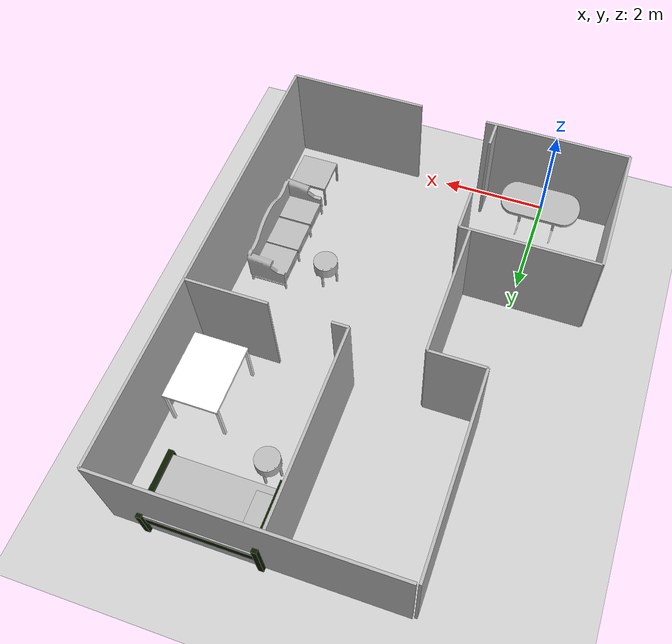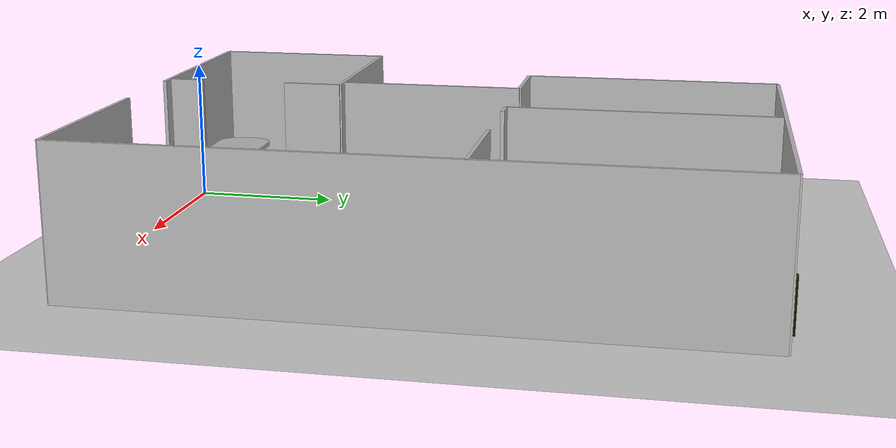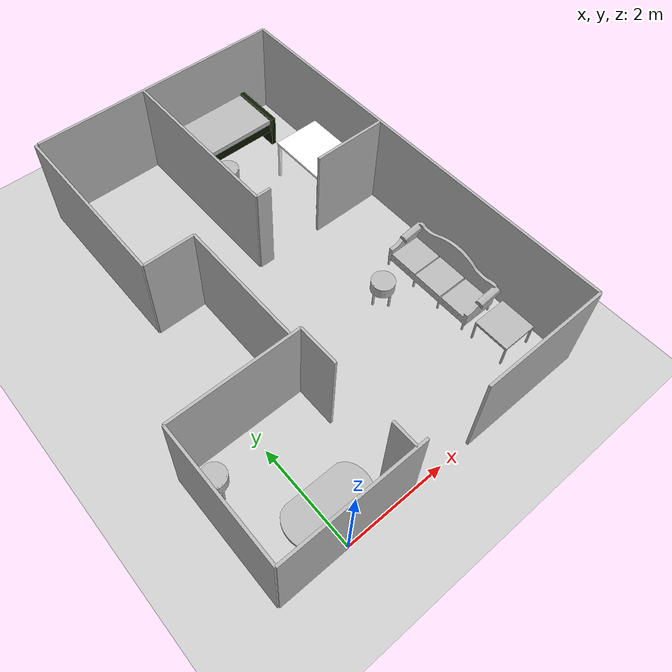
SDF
<sdf version="1.5">
 <world name="myworld">
  <include><uri>model://sun</uri></include>
  <include><uri>model://ground_plane</uri></include>
  <include><uri>model://hri_one_bedroom</uri></include>
  <include><uri>model://hri_couch</uri><pose>4.5 2.5 0 0 0 3.1416</pose></include>
  <include><uri>model://hri_coffeetable</uri><pose>4.5 1.0 0 0 0 0</pose></include>
  <include><uri>model://hri_roundtable</uri><pose>3.5 3 0 0 0 0</pose></include>
  <include><uri>model://hri_roundtable</uri><pose>-1 2 0 0 0 0</pose></include>
  <include><uri>model://hri_dinnertable</uri><pose>0 0.5 0 0 0 1.5708</pose></include>
  <include><uri>model://hri_bed</uri><pose>3.5 8 0 0 0 3.1416</pose></include>
  <include><uri>model://hri_roundtable</uri><pose>3 7 0 0 0 0</pose></include>
  <include><uri>model://hri_desk</uri><pose>4.5 6 0 0 0 1.5708</pose></include>
 </world>
</sdf>

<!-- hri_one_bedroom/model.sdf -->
<sdf version="1.4">
<model name="hri_one_bedroom">
  <pose>0 0 0 0 0 0</pose>
  <static>true</static>

    <link name="wall1">
      <pose>0 0 1 0 0 0</pose>
      <inertial>
        <mass>1000.0</mass>
        <inertia> <!-- interias are tricky to compute -->
          <!-- http://answers.gazebosim.org/question/4372/the-inertia-matrix-explained/ -->
          <ixx>0.083</ixx>       <!-- for a box: ixx = 0.083 * mass * (y*y + z*z) -->
          <ixy>0.0</ixy>         <!-- for a box: ixy = 0 -->
          <ixz>0.0</ixz>         <!-- for a box: ixz = 0 -->
          <iyy>0.083</iyy>       <!-- for a box: iyy = 0.083 * mass * (x*x + z*z) -->
          <iyz>0.0</iyz>         <!-- for a box: iyz = 0 -->
          <izz>0.083</izz>       <!-- for a box: izz = 0.083 * mass * (x*x + y*y) -->
        </inertia>
      </inertial>
      <collision name="collision">
        <geometry>
          <box>
            <size>2.7    0.0500    2.0000</size>
          </box>
        </geometry>
      </collision>
      <visual name="visual">
        <geometry>
          <box>
            <size>2.7    0.0500    2.0000</size>
          </box>
        </geometry>
      </visual>
    </link>

    <link name="wall2">
      <pose>-1.35 1.25 1 0 0 0</pose>
      <inertial>
        <mass>1000.0</mass>
        <inertia> <!-- interias are tricky to compute -->
          <!-- http://answers.gazebosim.org/question/4372/the-inertia-matrix-explained/ -->
          <ixx>0.083</ixx>       <!-- for a box: ixx = 0.083 * mass * (y*y + z*z) -->
          <ixy>0.0</ixy>         <!-- for a box: ixy = 0 -->
          <ixz>0.0</ixz>         <!-- for a box: ixz = 0 -->
          <iyy>0.083</iyy>       <!-- for a box: iyy = 0.083 * mass * (x*x + z*z) -->
          <iyz>0.0</iyz>         <!-- for a box: iyz = 0 -->
          <izz>0.083</izz>       <!-- for a box: izz = 0.083 * mass * (x*x + y*y) -->
        </inertia>
      </inertial>
      <collision name="collision">
        <geometry>
          <box>
            <size>0.0500    2.5    2.0000</size>
          </box>
        </geometry>
      </collision>
      <visual name="visual">
        <geometry>
          <box>
            <size>0.0500    2.5    2.0000</size>
          </box>
        </geometry>
      </visual>
    </link>

    <link name="wall3">
      <pose>-0.1 2.5 1 0 0 0</pose>
      <inertial>
        <mass>1000.0</mass>
        <inertia> <!-- interias are tricky to compute -->
          <!-- http://answers.gazebosim.org/question/4372/the-inertia-matrix-explained/ -->
          <ixx>0.083</ixx>       <!-- for a box: ixx = 0.083 * mass * (y*y + z*z) -->
          <ixy>0.0</ixy>         <!-- for a box: ixy = 0 -->
          <ixz>0.0</ixz>         <!-- for a box: ixz = 0 -->
          <iyy>0.083</iyy>       <!-- for a box: iyy = 0.083 * mass * (x*x + z*z) -->
          <iyz>0.0</iyz>         <!-- for a box: iyz = 0 -->
          <izz>0.083</izz>       <!-- for a box: izz = 0.083 * mass * (x*x + y*y) -->
        </inertia>
      </inertial>
      <collision name="collision">
        <geometry>
          <box>
            <size>2.5    0.0500    2.0000</size>
          </box>
        </geometry>
      </collision>
      <visual name="visual">
        <geometry>
          <box>
            <size>2.5    0.0500    2.0000</size>
          </box>
        </geometry>
      </visual>
    </link>

    <link name="wall4">
      <pose>1.15 0.25 1 0 0 0</pose>
      <inertial>
        <mass>1000.0</mass>
        <inertia> <!-- interias are tricky to compute -->
          <!-- http://answers.gazebosim.org/question/4372/the-inertia-matrix-explained/ -->
          <ixx>0.083</ixx>       <!-- for a box: ixx = 0.083 * mass * (y*y + z*z) -->
          <ixy>0.0</ixy>         <!-- for a box: ixy = 0 -->
          <ixz>0.0</ixz>         <!-- for a box: ixz = 0 -->
          <iyy>0.083</iyy>       <!-- for a box: iyy = 0.083 * mass * (x*x + z*z) -->
          <iyz>0.0</iyz>         <!-- for a box: iyz = 0 -->
          <izz>0.083</izz>       <!-- for a box: izz = 0.083 * mass * (x*x + y*y) -->
        </inertia>
      </inertial>
      <collision name="collision">
        <geometry>
          <box>
            <size>0.0500    0.5    2.0000</size>
          </box>
        </geometry>
      </collision>
      <visual name="visual">
        <geometry>
          <box>
            <size>0.0500    0.5    2.0000</size>
          </box>
        </geometry>
      </visual>
    </link>

    <link name="wall5">
      <pose>1.15 2.1 1 0 0 0</pose>
      <inertial>
        <mass>1000.0</mass>
        <inertia> <!-- interias are tricky to compute -->
          <!-- http://answers.gazebosim.org/question/4372/the-inertia-matrix-explained/ -->
          <ixx>0.083</ixx>       <!-- for a box: ixx = 0.083 * mass * (y*y + z*z) -->
          <ixy>0.0</ixy>         <!-- for a box: ixy = 0 -->
          <ixz>0.0</ixz>         <!-- for a box: ixz = 0 -->
          <iyy>0.083</iyy>       <!-- for a box: iyy = 0.083 * mass * (x*x + z*z) -->
          <iyz>0.0</iyz>         <!-- for a box: iyz = 0 -->
          <izz>0.083</izz>       <!-- for a box: izz = 0.083 * mass * (x*x + y*y) -->
        </inertia>
      </inertial>
      <collision name="collision">
        <geometry>
          <box>
            <size>0.0500    0.8    2.0000</size>
          </box>
        </geometry>
      </collision>
      <visual name="visual">
        <geometry>
          <box>
            <size>0.0500    0.8    2.0000</size>
          </box>
        </geometry>
      </visual>
    </link>

    <link name="wall6">
      <pose>0.95 3.75 1 0 0 0</pose>
      <inertial>
        <mass>1000.0</mass>
        <inertia> <!-- interias are tricky to compute -->
          <!-- http://answers.gazebosim.org/question/4372/the-inertia-matrix-explained/ -->
          <ixx>0.083</ixx>       <!-- for a box: ixx = 0.083 * mass * (y*y + z*z) -->
          <ixy>0.0</ixy>         <!-- for a box: ixy = 0 -->
          <ixz>0.0</ixz>         <!-- for a box: ixz = 0 -->
          <iyy>0.083</iyy>       <!-- for a box: iyy = 0.083 * mass * (x*x + z*z) -->
          <iyz>0.0</iyz>         <!-- for a box: iyz = 0 -->
          <izz>0.083</izz>       <!-- for a box: izz = 0.083 * mass * (x*x + y*y) -->
        </inertia>
      </inertial>
      <collision name="collision">
        <geometry>
          <box>
            <size>0.0500    2.5    2.0000</size>
          </box>
        </geometry>
      </collision>
      <visual name="visual">
        <geometry>
          <box>
            <size>0.0500    2.5    2.0000</size>
          </box>
        </geometry>
      </visual>
    </link>

    <link name="wall7">
      <pose>0.45 5 1 0 0 0</pose>
      <inertial>
        <mass>1000.0</mass>
        <inertia> <!-- interias are tricky to compute -->
          <!-- http://answers.gazebosim.org/question/4372/the-inertia-matrix-explained/ -->
          <ixx>0.083</ixx>       <!-- for a box: ixx = 0.083 * mass * (y*y + z*z) -->
          <ixy>0.0</ixy>         <!-- for a box: ixy = 0 -->
          <ixz>0.0</ixz>         <!-- for a box: ixz = 0 -->
          <iyy>0.083</iyy>       <!-- for a box: iyy = 0.083 * mass * (x*x + z*z) -->
          <iyz>0.0</iyz>         <!-- for a box: iyz = 0 -->
          <izz>0.083</izz>       <!-- for a box: izz = 0.083 * mass * (x*x + y*y) -->
        </inertia>
      </inertial>
      <collision name="collision">
        <geometry>
          <box>
            <size>1.0    0.0500    2.0000</size>
          </box>
        </geometry>
      </collision>
      <visual name="visual">
        <geometry>
          <box>
            <size>1.0    0.0500    2.0000</size>
          </box>
        </geometry>
      </visual>
    </link>

    <link name="wall8">
      <pose>-0.05 6.75 1 0 0 0</pose>
      <inertial>
        <mass>1000.0</mass>
        <inertia> <!-- interias are tricky to compute -->
          <!-- http://answers.gazebosim.org/question/4372/the-inertia-matrix-explained/ -->
          <ixx>0.083</ixx>       <!-- for a box: ixx = 0.083 * mass * (y*y + z*z) -->
          <ixy>0.0</ixy>         <!-- for a box: ixy = 0 -->
          <ixz>0.0</ixz>         <!-- for a box: ixz = 0 -->
          <iyy>0.083</iyy>       <!-- for a box: iyy = 0.083 * mass * (x*x + z*z) -->
          <iyz>0.0</iyz>         <!-- for a box: iyz = 0 -->
          <izz>0.083</izz>       <!-- for a box: izz = 0.083 * mass * (x*x + y*y) -->
        </inertia>
      </inertial>
      <collision name="collision">
        <geometry>
          <box>
            <size>0.0500    3.5    2.0000</size>
          </box>
        </geometry>
      </collision>
      <visual name="visual">
        <geometry>
          <box>
            <size>0.0500    3.5    2.0000</size>
          </box>
        </geometry>
      </visual>
    </link>

    <link name="wall9">
      <pose>2.575 8.5 1 0 0 0</pose>
      <inertial>
        <mass>1000.0</mass>
        <inertia> <!-- interias are tricky to compute -->
          <!-- http://answers.gazebosim.org/question/4372/the-inertia-matrix-explained/ -->
          <ixx>0.083</ixx>       <!-- for a box: ixx = 0.083 * mass * (y*y + z*z) -->
          <ixy>0.0</ixy>         <!-- for a box: ixy = 0 -->
          <ixz>0.0</ixz>         <!-- for a box: ixz = 0 -->
          <iyy>0.083</iyy>       <!-- for a box: iyy = 0.083 * mass * (x*x + z*z) -->
          <iyz>0.0</iyz>         <!-- for a box: iyz = 0 -->
          <izz>0.083</izz>       <!-- for a box: izz = 0.083 * mass * (x*x + y*y) -->
        </inertia>
      </inertial>
      <collision name="collision">
        <geometry>
          <box>
            <size>5.15    0.0500    2.0000</size>
          </box>
        </geometry>
      </collision>
      <visual name="visual">
        <geometry>
          <box>
            <size>5.15    0.0500    2.0000</size>
          </box>
        </geometry>
      </visual>
    </link>

    <link name="wall10">
      <pose>5.15 4.25 1 0 0 0</pose>
      <inertial>
        <mass>1000.0</mass>
        <inertia> <!-- interias are tricky to compute -->
          <!-- http://answers.gazebosim.org/question/4372/the-inertia-matrix-explained/ -->
          <ixx>0.083</ixx>       <!-- for a box: ixx = 0.083 * mass * (y*y + z*z) -->
          <ixy>0.0</ixy>         <!-- for a box: ixy = 0 -->
          <ixz>0.0</ixz>         <!-- for a box: ixz = 0 -->
          <iyy>0.083</iyy>       <!-- for a box: iyy = 0.083 * mass * (x*x + z*z) -->
          <iyz>0.0</iyz>         <!-- for a box: iyz = 0 -->
          <izz>0.083</izz>       <!-- for a box: izz = 0.083 * mass * (x*x + y*y) -->
        </inertia>
      </inertial>
      <collision name="collision">
        <geometry>
          <box>
            <size>0.0500    8.5    2.0000</size>
          </box>
        </geometry>
      </collision>
      <visual name="visual">
        <geometry>
          <box>
            <size>0.0500    8.5    2.0000</size>
          </box>
        </geometry>
      </visual>
    </link>

    <link name="wall11">
      <pose>3.875 0 1 0 0 0</pose>
      <inertial>
        <mass>1000.0</mass>
        <inertia> <!-- interias are tricky to compute -->
          <!-- http://answers.gazebosim.org/question/4372/the-inertia-matrix-explained/ -->
          <ixx>0.083</ixx>       <!-- for a box: ixx = 0.083 * mass * (y*y + z*z) -->
          <ixy>0.0</ixy>         <!-- for a box: ixy = 0 -->
          <ixz>0.0</ixz>         <!-- for a box: ixz = 0 -->
          <iyy>0.083</iyy>       <!-- for a box: iyy = 0.083 * mass * (x*x + z*z) -->
          <iyz>0.0</iyz>         <!-- for a box: iyz = 0 -->
          <izz>0.083</izz>       <!-- for a box: izz = 0.083 * mass * (x*x + y*y) -->
        </inertia>
      </inertial>
      <collision name="collision">
        <geometry>
          <box>
            <size>2.55    0.0500    2.0000</size>
          </box>
        </geometry>
      </collision>
      <visual name="visual">
        <geometry>
          <box>
            <size>2.55    0.0500    2.0000</size>
          </box>
        </geometry>
      </visual>
    </link>

    <link name="wall12">
      <pose>4.4 5 1 0 0 0</pose>
      <inertial>
        <mass>1000.0</mass>
        <inertia> <!-- interias are tricky to compute -->
          <!-- http://answers.gazebosim.org/question/4372/the-inertia-matrix-explained/ -->
          <ixx>0.083</ixx>       <!-- for a box: ixx = 0.083 * mass * (y*y + z*z) -->
          <ixy>0.0</ixy>         <!-- for a box: ixy = 0 -->
          <ixz>0.0</ixz>         <!-- for a box: ixz = 0 -->
          <iyy>0.083</iyy>       <!-- for a box: iyy = 0.083 * mass * (x*x + z*z) -->
          <iyz>0.0</iyz>         <!-- for a box: iyz = 0 -->
          <izz>0.083</izz>       <!-- for a box: izz = 0.083 * mass * (x*x + y*y) -->
        </inertia>
      </inertial>
      <collision name="collision">
        <geometry>
          <box>
            <size>1.5    0.0500    2.0000</size>
          </box>
        </geometry>
      </collision>
      <visual name="visual">
        <geometry>
          <box>
            <size>1.5    0.0500    2.0000</size>
          </box>
        </geometry>
      </visual>
    </link>

    <link name="wall13">
      <pose>2.4 5 1 0 0 0</pose>
      <inertial>
        <mass>1000.0</mass>
        <inertia> <!-- interias are tricky to compute -->
          <!-- http://answers.gazebosim.org/question/4372/the-inertia-matrix-explained/ -->
          <ixx>0.083</ixx>       <!-- for a box: ixx = 0.083 * mass * (y*y + z*z) -->
          <ixy>0.0</ixy>         <!-- for a box: ixy = 0 -->
          <ixz>0.0</ixz>         <!-- for a box: ixz = 0 -->
          <iyy>0.083</iyy>       <!-- for a box: iyy = 0.083 * mass * (x*x + z*z) -->
          <iyz>0.0</iyz>         <!-- for a box: iyz = 0 -->
          <izz>0.083</izz>       <!-- for a box: izz = 0.083 * mass * (x*x + y*y) -->
        </inertia>
      </inertial>
      <collision name="collision">
        <geometry>
          <box>
            <size>0.3    0.0500    2.0000</size>
          </box>
        </geometry>
      </collision>
      <visual name="visual">
        <geometry>
          <box>
            <size>0.3    0.0500    2.0000</size>
          </box>
        </geometry>
      </visual>
    </link>

    <link name="wall14">
      <pose>2.25 6.75 1 0 0 0</pose>
      <inertial>
        <mass>1000.0</mass>
        <inertia> <!-- interias are tricky to compute -->
          <!-- http://answers.gazebosim.org/question/4372/the-inertia-matrix-explained/ -->
          <ixx>0.083</ixx>       <!-- for a box: ixx = 0.083 * mass * (y*y + z*z) -->
          <ixy>0.0</ixy>         <!-- for a box: ixy = 0 -->
          <ixz>0.0</ixz>         <!-- for a box: ixz = 0 -->
          <iyy>0.083</iyy>       <!-- for a box: iyy = 0.083 * mass * (x*x + z*z) -->
          <iyz>0.0</iyz>         <!-- for a box: iyz = 0 -->
          <izz>0.083</izz>       <!-- for a box: izz = 0.083 * mass * (x*x + y*y) -->
        </inertia>
      </inertial>
      <collision name="collision">
        <geometry>
          <box>
            <size>0.0500    3.5    2.0000</size>
          </box>
        </geometry>
      </collision>
      <visual name="visual">
        <geometry>
          <box>
            <size>0.0500    3.5    2.0000</size>
          </box>
        </geometry>
      </visual>
    </link>

  </model>
</sdf>

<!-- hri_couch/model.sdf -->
<sdf version="1.4">
<model name="couch">
  <pose>0 0 0 0 0 0</pose>
  <static>true</static>
    <link name="link">
      <pose>0 0 0 0 0 0</pose>
      <inertial>
        <mass>1.0</mass>
        <inertia> <!-- interias are tricky to compute -->
          <!-- http://answers.gazebosim.org/question/4372/the-inertia-matrix-explained/ -->
          <ixx>0.083</ixx>       <!-- for a box: ixx = 0.083 * mass * (y*y + z*z) -->
          <ixy>0.0</ixy>         <!-- for a box: ixy = 0 -->
          <ixz>0.0</ixz>         <!-- for a box: ixz = 0 -->
          <iyy>0.083</iyy>       <!-- for a box: iyy = 0.083 * mass * (x*x + z*z) -->
          <iyz>0.0</iyz>         <!-- for a box: iyz = 0 -->
          <izz>0.083</izz>       <!-- for a box: izz = 0.083 * mass * (x*x + y*y) -->
        </inertia>
      </inertial>
      <collision name="collision">
	<pose>0 0 0 1.5708 0 0</pose>
        <geometry>
	  <mesh>
	    <uri>model://hri_couch/meshes/couch.dae</uri>
	    <scale>1 1 1</scale>
	  </mesh>
        </geometry>
      </collision>
      <visual name="visual">
	<pose>0 0 0 1.5708 0 0</pose>
        <geometry>
	  <mesh>
	    <uri>model://hri_couch/meshes/couch.dae</uri>
	    <scale>1 1 1</scale>
	  </mesh>
        </geometry>
      </visual>
    </link>
  </model>
</sdf>

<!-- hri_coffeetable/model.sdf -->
<sdf version="1.4">
<model name="coffee table">
  <pose>0 0 0 0 0 0</pose>
  <static>true</static>
    <link name="link">
      <pose>0 0 0 0 0 0</pose>
      <inertial>
        <mass>1.0</mass>
        <inertia> <!-- interias are tricky to compute -->
          <!-- http://answers.gazebosim.org/question/4372/the-inertia-matrix-explained/ -->
          <ixx>0.083</ixx>       <!-- for a box: ixx = 0.083 * mass * (y*y + z*z) -->
          <ixy>0.0</ixy>         <!-- for a box: ixy = 0 -->
          <ixz>0.0</ixz>         <!-- for a box: ixz = 0 -->
          <iyy>0.083</iyy>       <!-- for a box: iyy = 0.083 * mass * (x*x + z*z) -->
          <iyz>0.0</iyz>         <!-- for a box: iyz = 0 -->
          <izz>0.083</izz>       <!-- for a box: izz = 0.083 * mass * (x*x + y*y) -->
        </inertia>
      </inertial>
      <collision name="collision">
	<pose>0 0 0 1.5708 0 0</pose>
        <geometry>
	  <mesh>
	    <uri>model://hri_coffeetable/meshes/coffeetable.dae</uri>
	    <scale>1 1 1</scale>
	  </mesh>
        </geometry>
      </collision>
      <visual name="visual">
	<pose>0 0 0 1.5708 0 0</pose>
        <geometry>
	  <mesh>
	    <uri>model://hri_coffeetable/meshes/coffeetable.dae</uri>
	    <scale>1 1 1</scale>
	  </mesh>
        </geometry>
      </visual>
    </link>
  </model>
</sdf>

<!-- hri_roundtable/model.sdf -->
<sdf version="1.4">
<model name="round table">
  <pose>0 0 0 0 0 0</pose>
  <static>true</static>
    <link name="link">
      <pose>0 0 0 0 0 0</pose>
      <inertial>
        <mass>1.0</mass>
        <inertia> <!-- interias are tricky to compute -->
          <!-- http://answers.gazebosim.org/question/4372/the-inertia-matrix-explained/ -->
          <ixx>0.083</ixx>       <!-- for a box: ixx = 0.083 * mass * (y*y + z*z) -->
          <ixy>0.0</ixy>         <!-- for a box: ixy = 0 -->
          <ixz>0.0</ixz>         <!-- for a box: ixz = 0 -->
          <iyy>0.083</iyy>       <!-- for a box: iyy = 0.083 * mass * (x*x + z*z) -->
          <iyz>0.0</iyz>         <!-- for a box: iyz = 0 -->
          <izz>0.083</izz>       <!-- for a box: izz = 0.083 * mass * (x*x + y*y) -->
        </inertia>
      </inertial>
      <collision name="collision">
	<pose>0 0 0 1.5708 0 0</pose>
        <geometry>
	  <mesh>
	    <uri>model://hri_roundtable/meshes/roundtable.dae</uri>
	    <scale>1 1 1</scale>
	  </mesh>
        </geometry>
      </collision>
      <visual name="visual">
	<pose>0 0 0 1.5708 0 0</pose>
        <geometry>
	  <mesh>
	    <uri>model://hri_roundtable/meshes/roundtable.dae</uri>
	    <scale>1 1 1</scale>
	  </mesh>
        </geometry>
      </visual>
    </link>
  </model>
</sdf>

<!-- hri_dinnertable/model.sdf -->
<sdf version="1.4">
<model name="dinner table">
  <pose>0 0 0 0 0 0</pose>
  <static>true</static>
    <link name="link">
      <pose>0 0 0 0 0 0</pose>
      <inertial>
        <mass>1.0</mass>
        <inertia> <!-- interias are tricky to compute -->
          <!-- http://answers.gazebosim.org/question/4372/the-inertia-matrix-explained/ -->
          <ixx>0.083</ixx>       <!-- for a box: ixx = 0.083 * mass * (y*y + z*z) -->
          <ixy>0.0</ixy>         <!-- for a box: ixy = 0 -->
          <ixz>0.0</ixz>         <!-- for a box: ixz = 0 -->
          <iyy>0.083</iyy>       <!-- for a box: iyy = 0.083 * mass * (x*x + z*z) -->
          <iyz>0.0</iyz>         <!-- for a box: iyz = 0 -->
          <izz>0.083</izz>       <!-- for a box: izz = 0.083 * mass * (x*x + y*y) -->
        </inertia>
      </inertial>
      <collision name="collision">
	<pose>0 0 0 1.5708 0 0</pose>
        <geometry>
	  <mesh>
	    <uri>model://hri_dinnertable/meshes/dinnertable.dae</uri>
	    <scale>1 1 1</scale>
	  </mesh>
        </geometry>
      </collision>
      <visual name="visual">
	<pose>0 0 0 1.5708 0 0</pose>
        <geometry>
	  <mesh>
	    <uri>model://hri_dinnertable/meshes/dinnertable.dae</uri>
	    <scale>1 1 1</scale>
	  </mesh>
        </geometry>
      </visual>
    </link>
  </model>
</sdf>

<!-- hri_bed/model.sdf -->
<sdf version="1.5">
<model name="bed">
  <static>true</static>
    <link name="link">
      <pose>0 0 0.6 0 0 0</pose>
      <inertial>
        <mass>1.0</mass>
        <inertia> <!-- interias are tricky to compute -->
          <!-- http://answers.gazebosim.org/question/4372/the-inertia-matrix-explained/ -->
          <ixx>0.083</ixx>       <!-- for a box: ixx = 0.083 * mass * (y*y + z*z) -->
          <ixy>0.0</ixy>         <!-- for a box: ixy = 0 -->
          <ixz>0.0</ixz>         <!-- for a box: ixz = 0 -->
          <iyy>0.083</iyy>       <!-- for a box: iyy = 0.083 * mass * (x*x + z*z) -->
          <iyz>0.0</iyz>         <!-- for a box: iyz = 0 -->
          <izz>0.083</izz>       <!-- for a box: izz = 0.083 * mass * (x*x + y*y) -->
        </inertia>
      </inertial>
      <collision name="collision">
        <geometry>
          <box>
            <size>2.0    1.1    0.10</size>
          </box>
        </geometry>
      </collision>
      <visual name="visual">
        <geometry>
          <box>
            <size>2.0    1.1    0.10</size>
          </box>
        </geometry>
      </visual>
    </link>

    <link name="link2">
      <pose>0 0 0.45 0 0 0</pose>
      <inertial>
        <mass>1.0</mass>
        <inertia> <!-- interias are tricky to compute -->
          <!-- http://answers.gazebosim.org/question/4372/the-inertia-matrix-explained/ -->
          <ixx>0.083</ixx>       <!-- for a box: ixx = 0.083 * mass * (y*y + z*z) -->
          <ixy>0.0</ixy>         <!-- for a box: ixy = 0 -->
          <ixz>0.0</ixz>         <!-- for a box: ixz = 0 -->
          <iyy>0.083</iyy>       <!-- for a box: iyy = 0.083 * mass * (x*x + z*z) -->
          <iyz>0.0</iyz>         <!-- for a box: iyz = 0 -->
          <izz>0.083</izz>       <!-- for a box: izz = 0.083 * mass * (x*x + y*y) -->
        </inertia>
      </inertial>
      <collision name="collision">
        <geometry>
          <box>
            <size>2.0    1.1    0.20</size>
          </box>
        </geometry>
      </collision>
      <visual name="visual">
        <geometry>
          <box>
            <size>2.0    1.1    0.20</size>
          </box>
        </geometry>
	<material>
	  <ambient>0.25 0 0 1</ambient>
	  <diffuse>0.05 0.1 0 1</diffuse>
	  <specular>0.1 0.1 0.1 1</specular>
	  <emissive>0 0 0 0</emissive>
	</material>
      </visual>
    </link>

    <link name="link3">
      <pose>1 0 0.5 0 0 0</pose>
      <inertial>
        <mass>1.0</mass>
        <inertia> <!-- interias are tricky to compute -->
          <!-- http://answers.gazebosim.org/question/4372/the-inertia-matrix-explained/ -->
          <ixx>0.083</ixx>       <!-- for a box: ixx = 0.083 * mass * (y*y + z*z) -->
          <ixy>0.0</ixy>         <!-- for a box: ixy = 0 -->
          <ixz>0.0</ixz>         <!-- for a box: ixz = 0 -->
          <iyy>0.083</iyy>       <!-- for a box: iyy = 0.083 * mass * (x*x + z*z) -->
          <iyz>0.0</iyz>         <!-- for a box: iyz = 0 -->
          <izz>0.083</izz>       <!-- for a box: izz = 0.083 * mass * (x*x + y*y) -->
        </inertia>
      </inertial>
      <collision name="collision">
        <geometry>
          <box>
            <size>0.1    1.2    1.0</size>
          </box>
        </geometry>
      </collision>
      <visual name="visual">
        <geometry>
          <box>
            <size>0.1    1.2    1.0</size>
          </box>
        </geometry>
	<material>
	  <ambient>0.25 0 0 1</ambient>
	  <diffuse>0.05 0.1 0 1</diffuse>
	  <specular>0.1 0.1 0.1 1</specular>
	  <emissive>0 0 0 0</emissive>
	</material>
      </visual>
    </link>

    <link name="link4">
      <pose>-1 0 0.35 0 0 0</pose>
      <inertial>
        <mass>1.0</mass>
        <inertia> <!-- interias are tricky to compute -->
          <!-- http://answers.gazebosim.org/question/4372/the-inertia-matrix-explained/ -->
          <ixx>0.083</ixx>       <!-- for a box: ixx = 0.083 * mass * (y*y + z*z) -->
          <ixy>0.0</ixy>         <!-- for a box: ixy = 0 -->
          <ixz>0.0</ixz>         <!-- for a box: ixz = 0 -->
          <iyy>0.083</iyy>       <!-- for a box: iyy = 0.083 * mass * (x*x + z*z) -->
          <iyz>0.0</iyz>         <!-- for a box: iyz = 0 -->
          <izz>0.083</izz>       <!-- for a box: izz = 0.083 * mass * (x*x + y*y) -->
        </inertia>
      </inertial>
      <collision name="collision">
        <geometry>
          <box>
            <size>0.1    1.2    0.70</size>
          </box>
        </geometry>
      </collision>
      <visual name="visual">
        <geometry>
          <box>
            <size>0.1    1.2    0.70</size>
          </box>
        </geometry>
	<material>
	  <ambient>0.25 0 0 1</ambient>
	  <diffuse>0.05 0.1 0 1</diffuse>
	  <specular>0.1 0.1 0.1 1</specular>
	  <emissive>0 0 0 0</emissive>
	</material>
      </visual>
    </link>

    <link name="link5">
      <pose>0.80 0 0.7 0 0 0</pose>
      <inertial>
        <mass>1.0</mass>
        <inertia> <!-- interias are tricky to compute -->
          <!-- http://answers.gazebosim.org/question/4372/the-inertia-matrix-explained/ -->
          <ixx>0.083</ixx>       <!-- for a box: ixx = 0.083 * mass * (y*y + z*z) -->
          <ixy>0.0</ixy>         <!-- for a box: ixy = 0 -->
          <ixz>0.0</ixz>         <!-- for a box: ixz = 0 -->
          <iyy>0.083</iyy>       <!-- for a box: iyy = 0.083 * mass * (x*x + z*z) -->
          <iyz>0.0</iyz>         <!-- for a box: iyz = 0 -->
          <izz>0.083</izz>       <!-- for a box: izz = 0.083 * mass * (x*x + y*y) -->
        </inertia>
      </inertial>
      <collision name="collision">
        <geometry>
          <box>
            <size>0.4    0.8    0.10</size>
          </box>
        </geometry>
      </collision>
      <visual name="visual">
        <geometry>
          <box>
            <size>0.4    0.8    0.10</size>
          </box>
        </geometry>
      </visual>
    </link>

  </model>
</sdf>

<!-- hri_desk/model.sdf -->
<sdf version="1.4">
<model name="hri_desk">
  <pose>0 0 0 0 0 0</pose>
  <static>true</static>

    <link name="wall1">
      <pose>0 0 0.885 0 0 0</pose>
      <inertial>
        <mass>1000.0</mass>
        <inertia> <!-- interias are tricky to compute -->
          <!-- http://answers.gazebosim.org/question/4372/the-inertia-matrix-explained/ -->
          <ixx>0.083</ixx>       <!-- for a box: ixx = 0.083 * mass * (y*y + z*z) -->
          <ixy>0.0</ixy>         <!-- for a box: ixy = 0 -->
          <ixz>0.0</ixz>         <!-- for a box: ixz = 0 -->
          <iyy>0.083</iyy>       <!-- for a box: iyy = 0.083 * mass * (x*x + z*z) -->
          <iyz>0.0</iyz>         <!-- for a box: iyz = 0 -->
          <izz>0.083</izz>       <!-- for a box: izz = 0.083 * mass * (x*x + y*y) -->
        </inertia>
      </inertial>
      <collision name="collision">
        <geometry>
          <box>
            <size>1.3    1.0    0.05</size>
          </box>
        </geometry>
      </collision>
      <visual name="visual">
        <geometry>
          <box>
            <size>1.3    1.0    0.05</size>
          </box>
        </geometry>
	<material>
          <ambient>0.5 0.5 0.3 1</ambient>
          <diffuse>1 1 1 1</diffuse>
          <specular>0.1 0.1 0.1 1</specular>
          <emissive>0 0 0 0</emissive>
        </material>
      </visual>
    </link>

    <link name="wall2">
      <pose>0.6    0.475    0.43 0 0 0</pose>
      <inertial>
        <mass>1000.0</mass>
        <inertia> <!-- interias are tricky to compute -->
          <!-- http://answers.gazebosim.org/question/4372/the-inertia-matrix-explained/ -->
          <ixx>0.083</ixx>       <!-- for a box: ixx = 0.083 * mass * (y*y + z*z) -->
          <ixy>0.0</ixy>         <!-- for a box: ixy = 0 -->
          <ixz>0.0</ixz>         <!-- for a box: ixz = 0 -->
          <iyy>0.083</iyy>       <!-- for a box: iyy = 0.083 * mass * (x*x + z*z) -->
          <iyz>0.0</iyz>         <!-- for a box: iyz = 0 -->
          <izz>0.083</izz>       <!-- for a box: izz = 0.083 * mass * (x*x + y*y) -->
        </inertia>
      </inertial>
      <collision name="collision">
        <geometry>
          <box>
            <size>0.0500    0.0500    0.86</size>
          </box>
        </geometry>
      </collision>
      <visual name="visual">
        <geometry>
          <box>
            <size>0.0500    0.0500    0.86</size>
          </box>
        </geometry>
	<material>
          <ambient>1 1 0.5 1</ambient>
          <diffuse>1 1 1 1</diffuse>
          <specular>0.1 0.1 0.1 1</specular>
          <emissive>0 0 0 0</emissive>
        </material>
      </visual>
    </link>

    <link name="wall3">
      <pose>0.6    -0.475    0.43 0 0 0</pose>
      <inertial>
        <mass>1000.0</mass>
        <inertia> <!-- interias are tricky to compute -->
          <!-- http://answers.gazebosim.org/question/4372/the-inertia-matrix-explained/ -->
          <ixx>0.083</ixx>       <!-- for a box: ixx = 0.083 * mass * (y*y + z*z) -->
          <ixy>0.0</ixy>         <!-- for a box: ixy = 0 -->
          <ixz>0.0</ixz>         <!-- for a box: ixz = 0 -->
          <iyy>0.083</iyy>       <!-- for a box: iyy = 0.083 * mass * (x*x + z*z) -->
          <iyz>0.0</iyz>         <!-- for a box: iyz = 0 -->
          <izz>0.083</izz>       <!-- for a box: izz = 0.083 * mass * (x*x + y*y) -->
        </inertia>
      </inertial>
      <collision name="collision">
        <geometry>
          <box>
            <size>0.0500    0.0500    0.86</size>
          </box>
        </geometry>
      </collision>
      <visual name="visual">
        <geometry>
          <box>
            <size>0.0500    0.0500    0.86</size>
          </box>
        </geometry>
	<material>
          <ambient>1 1 0.5 1</ambient>
          <diffuse>1 1 1 1</diffuse>
          <specular>0.1 0.1 0.1 1</specular>
          <emissive>0 0 0 0</emissive>
        </material>
      </visual>
    </link>

    <link name="wall4">
      <pose>-0.6    -0.475    0.43 0 0 0</pose>
      <inertial>
        <mass>1000.0</mass>
        <inertia> <!-- interias are tricky to compute -->
          <!-- http://answers.gazebosim.org/question/4372/the-inertia-matrix-explained/ -->
          <ixx>0.083</ixx>       <!-- for a box: ixx = 0.083 * mass * (y*y + z*z) -->
          <ixy>0.0</ixy>         <!-- for a box: ixy = 0 -->
          <ixz>0.0</ixz>         <!-- for a box: ixz = 0 -->
          <iyy>0.083</iyy>       <!-- for a box: iyy = 0.083 * mass * (x*x + z*z) -->
          <iyz>0.0</iyz>         <!-- for a box: iyz = 0 -->
          <izz>0.083</izz>       <!-- for a box: izz = 0.083 * mass * (x*x + y*y) -->
        </inertia>
      </inertial>
      <collision name="collision">
        <geometry>
          <box>
            <size>0.0500    0.0500    0.86</size>
          </box>
        </geometry>
      </collision>
      <visual name="visual">
        <geometry>
          <box>
            <size>0.0500    0.0500    0.86</size>
          </box>
        </geometry>
	<material>
          <ambient>1 1 0.5 1</ambient>
          <diffuse>1 1 1 1</diffuse>
          <specular>0.1 0.1 0.1 1</specular>
          <emissive>0 0 0 0</emissive>
        </material>
      </visual>
    </link>

    <link name="wall5">
      <pose>-0.6    0.475    0.43 0 0 0</pose>
      <inertial>
        <mass>1000.0</mass>
        <inertia> <!-- interias are tricky to compute -->
          <!-- http://answers.gazebosim.org/question/4372/the-inertia-matrix-explained/ -->
          <ixx>0.083</ixx>       <!-- for a box: ixx = 0.083 * mass * (y*y + z*z) -->
          <ixy>0.0</ixy>         <!-- for a box: ixy = 0 -->
          <ixz>0.0</ixz>         <!-- for a box: ixz = 0 -->
          <iyy>0.083</iyy>       <!-- for a box: iyy = 0.083 * mass * (x*x + z*z) -->
          <iyz>0.0</iyz>         <!-- for a box: iyz = 0 -->
          <izz>0.083</izz>       <!-- for a box: izz = 0.083 * mass * (x*x + y*y) -->
        </inertia>
      </inertial>
      <collision name="collision">
        <geometry>
          <box>
            <size>0.0500    0.0500    0.86</size>
          </box>
        </geometry>
      </collision>
      <visual name="visual">
        <geometry>
          <box>
            <size>0.0500    0.0500    0.86</size>
          </box>
        </geometry>
	<material>
          <ambient>1 1 0.5 1</ambient>
          <diffuse>1 1 1 1</diffuse>
          <specular>0.1 0.1 0.1 1</specular>
          <emissive>0 0 0 0</emissive>
        </material>
      </visual>
    </link>

  </model>
</sdf>
